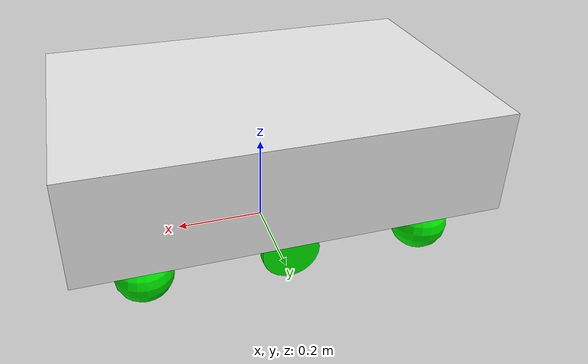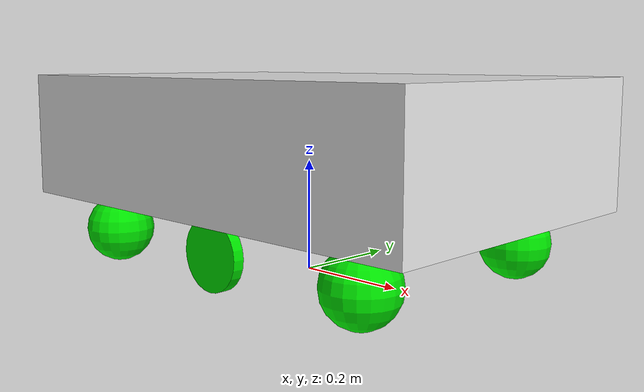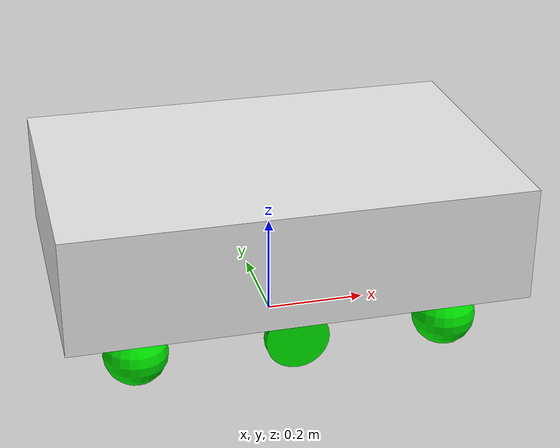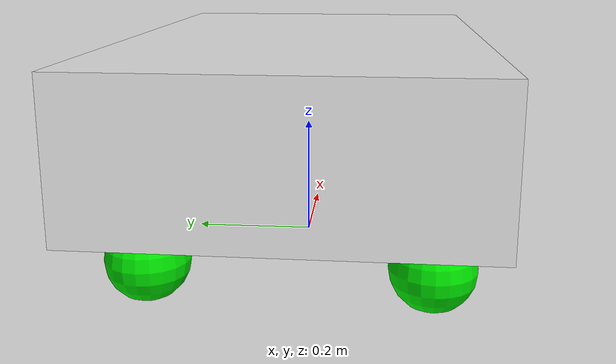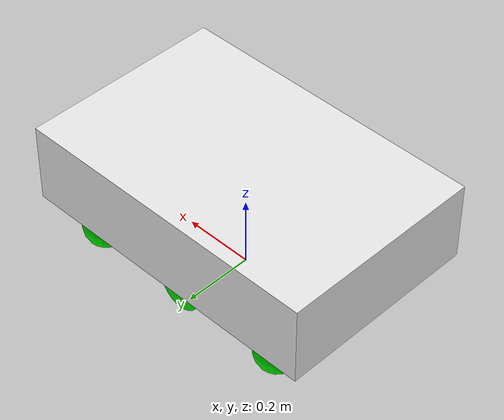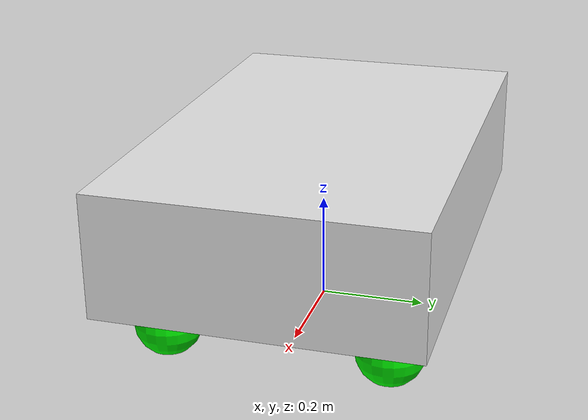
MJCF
<mujoco model="mir200">
  <option timestep="0.002" iterations="100" solver="Newton" gravity="0 0 -9.81" integrator="RK4"></option>

  <default>
    <joint type="free"/>
    <default class="drive-wheel">
      <geom type="cylinder" size=".0625 .01" rgba="0 .9 0 1"/>
      <joint type="hinge" axis="0 0 1"/>
    </default>
    <default class="castor-wheel">
      <geom type="sphere" size=".0625" rgba="0 .9 0 1"/>
    </default>
  </default>

  <worldbody>
    <body name="mir200" pos="0 0 .2385" euler='0 0 0'>
      <joint/>
      <geom name="body" type="box" mass="100" size=".445 .29 .1135" rgba=".9 .9 .9 1"/>
      <body name="right-tire" pos=".0 .222604 -.176" euler='-90 0 0'>
        <joint name = "right-wheel" class="drive-wheel"/>
        <geom class="drive-wheel"/>
      </body>
      <body name="left-tire" pos=".0 -.222604 -.176" euler='-90 0 0'>
        <joint name = "left-wheel" class="drive-wheel"/>
        <geom class="drive-wheel"/>
      </body>
      <body name="front-left" pos=".3037 .203 -.176" euler='0 0 0'>
        <joint type="ball"/>
        <geom class="castor-wheel"/>
      </body>
      <body name="front-right" pos=".3037 -.203 -.176" euler='0 0 0'>
        <joint type="ball"/>
        <geom class="castor-wheel"/>
      </body>
      <body name="back-left" pos="-.3078 .203 -.176" euler='0 0 0'>
        <joint type="ball"/>
        <geom class="castor-wheel"/>
      </body>
      <body name="back-right" pos="-.3078 -.203 -.176" euler='0 0 0'>
        <joint type="ball"/>
        <geom class="castor-wheel"/>
      </body>
    </body>
  </worldbody>

  <actuator>
    <motor name="ctrl_left_wheel" joint="right-wheel" ctrllimited="true" ctrlrange="-2. 2." />
    <motor name="ctrl_right_wheel" joint="left-wheel" ctrllimited="true" ctrlrange="-2. 2." />
  </actuator>

</mujoco>
